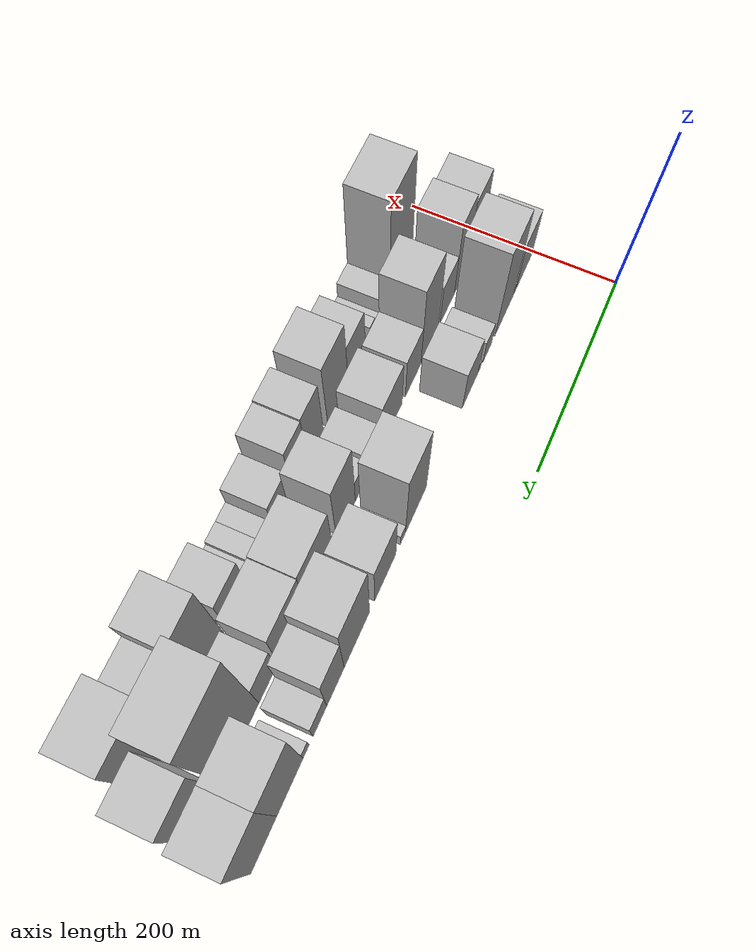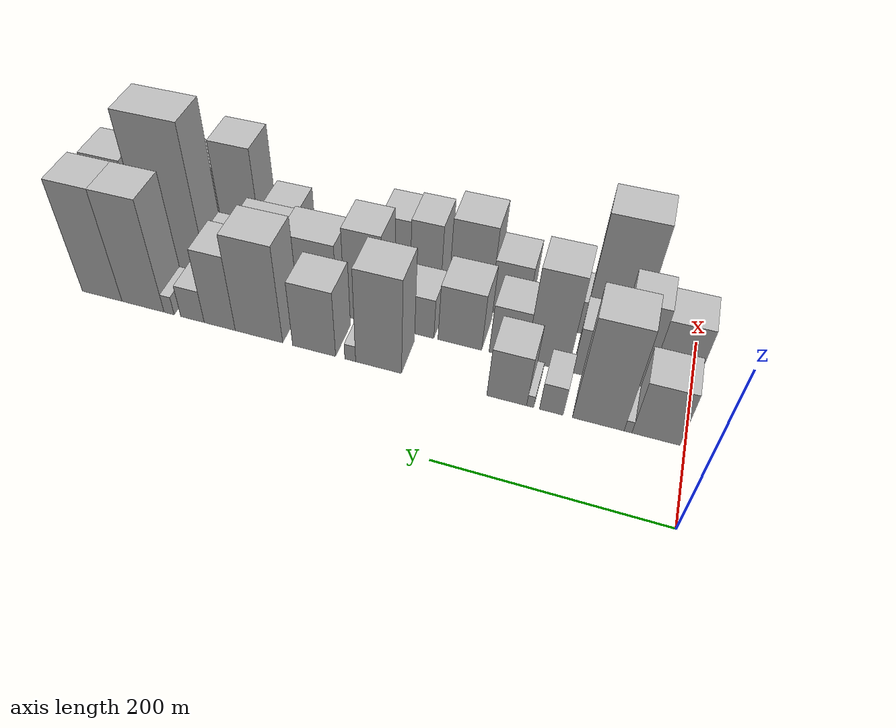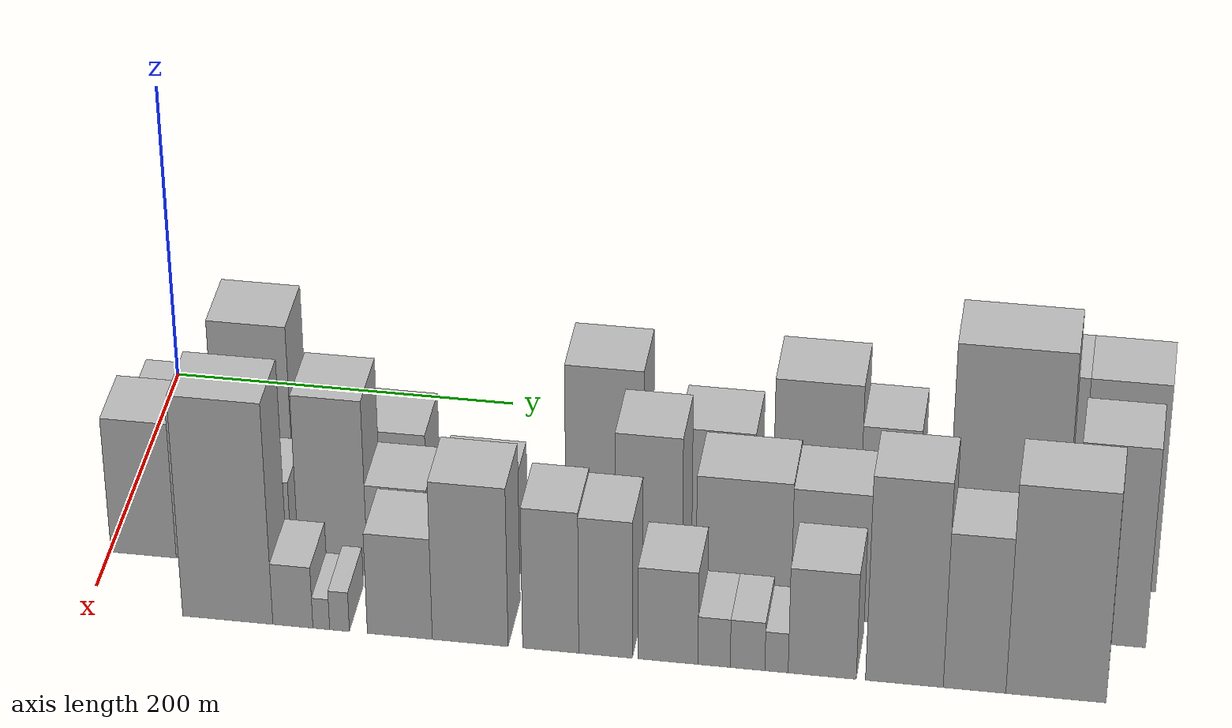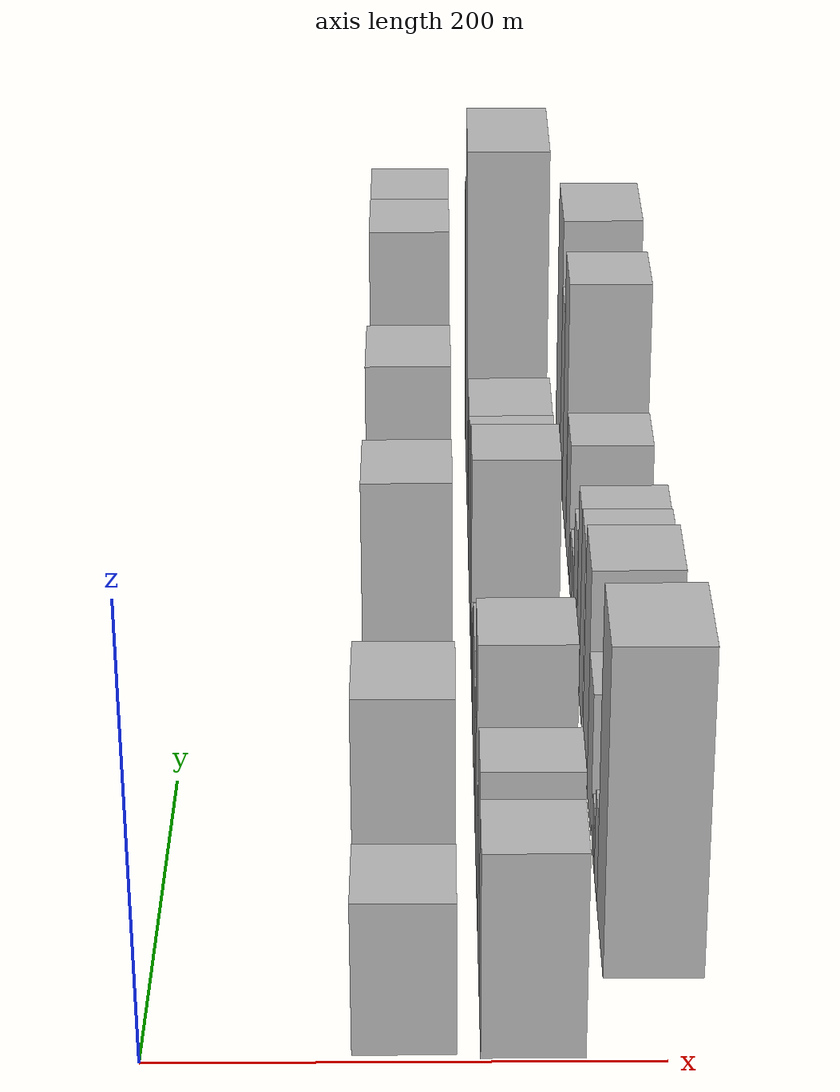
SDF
<sdf version="1.6">
 <world name="default">
  <model name="building_18">
   <static>1</static>
   <pose>100.0000 24.4933 0 0.000000 0.000000 0.000000</pose>
   <link name="link">
    <pose>0 0 34.50 0 0 0</pose>
    <collision name="collision"><geometry><box><size>40.0000 40.1148 69.0000</size></box></geometry></collision>
    <visual name="visual">
     <cast_shadows>0</cast_shadows>
     <geometry><box><size>40.0000 40.1148 69.0000</size></box></geometry>
     <material>
      <script>
       <uri>model://HANNAS_wall/materials/scripts</uri>
       <uri>model://HANNAS_wall/materials/textures</uri>
       <name>vrc/HANNAS_wall</name>
      </script>
     </material>
    </visual>
   </link>
  </model>
  <model name="building_19">
   <static>1</static>
   <pose>100.0000 47.8376 0 0.000000 0.000000 0.000000</pose>
   <link name="link">
    <pose>0 0 7.50 0 0 0</pose>
    <collision name="collision"><geometry><box><size>40.0000 6.5738 15.0000</size></box></geometry></collision>
    <visual name="visual">
     <cast_shadows>0</cast_shadows>
     <geometry><box><size>40.0000 6.5738 15.0000</size></box></geometry>
     <material>
      <script>
       <uri>model://HANNAS_wall/materials/scripts</uri>
       <uri>model://HANNAS_wall/materials/textures</uri>
       <name>vrc/HANNAS_wall</name>
      </script>
     </material>
    </visual>
   </link>
  </model>
  <model name="building_20">
   <static>1</static>
   <pose>100.0000 73.2737 0 0.000000 0.000000 0.000000</pose>
   <link name="link">
    <pose>0 0 64.50 0 0 0</pose>
    <collision name="collision"><geometry><box><size>40.0000 44.2983 129.0000</size></box></geometry></collision>
    <visual name="visual">
     <cast_shadows>0</cast_shadows>
     <geometry><box><size>40.0000 44.2983 129.0000</size></box></geometry>
     <material>
      <script>
       <uri>model://HANNAS_wall/materials/scripts</uri>
       <uri>model://HANNAS_wall/materials/textures</uri>
       <name>vrc/HANNAS_wall</name>
      </script>
     </material>
    </visual>
   </link>
  </model>
  <model name="building_21">
   <static>1</static>
   <pose>100.0000 113.8179 0 0.000000 0.000000 0.000000</pose>
   <link name="link">
    <pose>0 0 18.00 0 0 0</pose>
    <collision name="collision"><geometry><box><size>40.0000 20.7900 36.0000</size></box></geometry></collision>
    <visual name="visual">
     <cast_shadows>0</cast_shadows>
     <geometry><box><size>40.0000 20.7900 36.0000</size></box></geometry>
     <material>
      <script>
       <uri>model://HANNAS_wall/materials/scripts</uri>
       <uri>model://HANNAS_wall/materials/textures</uri>
       <name>vrc/HANNAS_wall</name>
      </script>
     </material>
    </visual>
   </link>
  </model>
  <model name="building_22">
   <static>1</static>
   <pose>100.0000 132.3706 0 0.000000 0.000000 0.000000</pose>
   <link name="link">
    <pose>0 0 7.50 0 0 0</pose>
    <collision name="collision"><geometry><box><size>40.0000 6.3154 15.0000</size></box></geometry></collision>
    <visual name="visual">
     <cast_shadows>0</cast_shadows>
     <geometry><box><size>40.0000 6.3154 15.0000</size></box></geometry>
     <material>
      <script>
       <uri>model://HANNAS_wall/materials/scripts</uri>
       <uri>model://HANNAS_wall/materials/textures</uri>
       <name>vrc/HANNAS_wall</name>
      </script>
     </material>
    </visual>
   </link>
  </model>
  <model name="building_23">
   <static>1</static>
   <pose>100.0000 153.3923 0 0.000000 0.000000 0.000000</pose>
   <link name="link">
    <pose>0 0 31.50 0 0 0</pose>
    <collision name="collision"><geometry><box><size>40.0000 35.7281 63.0000</size></box></geometry></collision>
    <visual name="visual">
     <cast_shadows>0</cast_shadows>
     <geometry><box><size>40.0000 35.7281 63.0000</size></box></geometry>
     <material>
      <script>
       <uri>model://HANNAS_wall/materials/scripts</uri>
       <uri>model://HANNAS_wall/materials/textures</uri>
       <name>vrc/HANNAS_wall</name>
      </script>
     </material>
    </visual>
   </link>
  </model>
  <model name="building_24">
   <static>1</static>
   <pose>100.0000 272.0891 0 0.000000 0.000000 0.000000</pose>
   <link name="link">
    <pose>0 0 60.00 0 0 0</pose>
    <collision name="collision"><geometry><box><size>40.0000 43.8885 120.0000</size></box></geometry></collision>
    <visual name="visual">
     <cast_shadows>0</cast_shadows>
     <geometry><box><size>40.0000 43.8885 120.0000</size></box></geometry>
     <material>
      <script>
       <uri>model://HANNAS_wall/materials/scripts</uri>
       <uri>model://HANNAS_wall/materials/textures</uri>
       <name>vrc/HANNAS_wall</name>
      </script>
     </material>
    </visual>
   </link>
  </model>
  <model name="building_25">
   <static>1</static>
   <pose>100.0000 299.2627 0 0.000000 0.000000 0.000000</pose>
   <link name="link">
    <pose>0 0 10.50 0 0 0</pose>
    <collision name="collision"><geometry><box><size>40.0000 10.4587 21.0000</size></box></geometry></collision>
    <visual name="visual">
     <cast_shadows>0</cast_shadows>
     <geometry><box><size>40.0000 10.4587 21.0000</size></box></geometry>
     <material>
      <script>
       <uri>model://HANNAS_wall/materials/scripts</uri>
       <uri>model://HANNAS_wall/materials/textures</uri>
       <name>vrc/HANNAS_wall</name>
      </script>
     </material>
    </visual>
   </link>
  </model>
  <model name="building_26">
   <static>1</static>
   <pose>100.0000 334.7505 0 0.000000 0.000000 0.000000</pose>
   <link name="link">
    <pose>0 0 42.00 0 0 0</pose>
    <collision name="collision"><geometry><box><size>40.0000 42.5169 84.0000</size></box></geometry></collision>
    <visual name="visual">
     <cast_shadows>0</cast_shadows>
     <geometry><box><size>40.0000 42.5169 84.0000</size></box></geometry>
     <material>
      <script>
       <uri>model://HANNAS_wall/materials/scripts</uri>
       <uri>model://HANNAS_wall/materials/textures</uri>
       <name>vrc/HANNAS_wall</name>
      </script>
     </material>
    </visual>
   </link>
  </model>
  <model name="building_27">
   <static>1</static>
   <pose>100.0000 390.1884 0 0.000000 0.000000 0.000000</pose>
   <link name="link">
    <pose>0 0 61.50 0 0 0</pose>
    <collision name="collision"><geometry><box><size>40.0000 48.3588 123.0000</size></box></geometry></collision>
    <visual name="visual">
     <cast_shadows>0</cast_shadows>
     <geometry><box><size>40.0000 48.3588 123.0000</size></box></geometry>
     <material>
      <script>
       <uri>model://HANNAS_wall/materials/scripts</uri>
       <uri>model://HANNAS_wall/materials/textures</uri>
       <name>vrc/HANNAS_wall</name>
      </script>
     </material>
    </visual>
   </link>
  </model>
  <model name="building_28">
   <static>1</static>
   <pose>100.0000 430.5338 0 0.000000 0.000000 0.000000</pose>
   <link name="link">
    <pose>0 0 48.00 0 0 0</pose>
    <collision name="collision"><geometry><box><size>40.0000 32.3321 96.0000</size></box></geometry></collision>
    <visual name="visual">
     <cast_shadows>0</cast_shadows>
     <geometry><box><size>40.0000 32.3321 96.0000</size></box></geometry>
     <material>
      <script>
       <uri>model://HANNAS_wall/materials/scripts</uri>
       <uri>model://HANNAS_wall/materials/textures</uri>
       <name>vrc/HANNAS_wall</name>
      </script>
     </material>
    </visual>
   </link>
  </model>
  <model name="building_29">
   <static>1</static>
   <pose>100.0000 459.1189 0 0.000000 0.000000 0.000000</pose>
   <link name="link">
    <pose>0 0 21.00 0 0 0</pose>
    <collision name="collision"><geometry><box><size>40.0000 24.8381 42.0000</size></box></geometry></collision>
    <visual name="visual">
     <cast_shadows>0</cast_shadows>
     <geometry><box><size>40.0000 24.8381 42.0000</size></box></geometry>
     <material>
      <script>
       <uri>model://HANNAS_wall/materials/scripts</uri>
       <uri>model://HANNAS_wall/materials/textures</uri>
       <name>vrc/HANNAS_wall</name>
      </script>
     </material>
    </visual>
   </link>
  </model>
  <model name="building_30">
   <static>1</static>
   <pose>100.0000 483.9694 0 0.000000 0.000000 0.000000</pose>
   <link name="link">
    <pose>0 0 12.00 0 0 0</pose>
    <collision name="collision"><geometry><box><size>40.0000 10.8628 24.0000</size></box></geometry></collision>
    <visual name="visual">
     <cast_shadows>0</cast_shadows>
     <geometry><box><size>40.0000 10.8628 24.0000</size></box></geometry>
     <material>
      <script>
       <uri>model://HANNAS_wall/materials/scripts</uri>
       <uri>model://HANNAS_wall/materials/textures</uri>
       <name>vrc/HANNAS_wall</name>
      </script>
     </material>
    </visual>
   </link>
  </model>
  <model name="building_31">
   <static>1</static>
   <pose>100.0000 512.2028 0 0.000000 0.000000 0.000000</pose>
   <link name="link">
    <pose>0 0 70.50 0 0 0</pose>
    <collision name="collision"><geometry><box><size>40.0000 45.6041 141.0000</size></box></geometry></collision>
    <visual name="visual">
     <cast_shadows>0</cast_shadows>
     <geometry><box><size>40.0000 45.6041 141.0000</size></box></geometry>
     <material>
      <script>
       <uri>model://HANNAS_wall/materials/scripts</uri>
       <uri>model://HANNAS_wall/materials/textures</uri>
       <name>vrc/HANNAS_wall</name>
      </script>
     </material>
    </visual>
   </link>
  </model>
  <model name="building_32">
   <static>1</static>
   <pose>100.0000 557.0036 0 0.000000 0.000000 0.000000</pose>
   <link name="link">
    <pose>0 0 70.50 0 0 0</pose>
    <collision name="collision"><geometry><box><size>40.0000 43.9974 141.0000</size></box></geometry></collision>
    <visual name="visual">
     <cast_shadows>0</cast_shadows>
     <geometry><box><size>40.0000 43.9974 141.0000</size></box></geometry>
     <material>
      <script>
       <uri>model://HANNAS_wall/materials/scripts</uri>
       <uri>model://HANNAS_wall/materials/textures</uri>
       <name>vrc/HANNAS_wall</name>
      </script>
     </material>
    </visual>
   </link>
  </model>
  <model name="building_46">
   <static>1</static>
   <pose>149.0000 19.5694 0 0.000000 0.000000 0.000000</pose>
   <link name="link">
    <pose>0 0 46.50 0 0 0</pose>
    <collision name="collision"><geometry><box><size>40.0000 37.1507 93.0000</size></box></geometry></collision>
    <visual name="visual">
     <cast_shadows>0</cast_shadows>
     <geometry><box><size>40.0000 37.1507 93.0000</size></box></geometry>
     <material>
      <script>
       <uri>model://HANNAS_wall/materials/scripts</uri>
       <uri>model://HANNAS_wall/materials/textures</uri>
       <name>vrc/HANNAS_wall</name>
      </script>
     </material>
    </visual>
   </link>
  </model>
  <model name="building_47">
   <static>1</static>
   <pose>149.0000 54.3203 0 0.000000 0.000000 0.000000</pose>
   <link name="link">
    <pose>0 0 52.50 0 0 0</pose>
    <collision name="collision"><geometry><box><size>40.0000 32.3511 105.0000</size></box></geometry></collision>
    <visual name="visual">
     <cast_shadows>0</cast_shadows>
     <geometry><box><size>40.0000 32.3511 105.0000</size></box></geometry>
     <material>
      <script>
       <uri>model://HANNAS_wall/materials/scripts</uri>
       <uri>model://HANNAS_wall/materials/textures</uri>
       <name>vrc/HANNAS_wall</name>
      </script>
     </material>
    </visual>
   </link>
  </model>
  <model name="building_48">
   <static>1</static>
   <pose>149.0000 87.2325 0 0.000000 0.000000 0.000000</pose>
   <link name="link">
    <pose>0 0 30.00 0 0 0</pose>
    <collision name="collision"><geometry><box><size>40.0000 33.4732 60.0000</size></box></geometry></collision>
    <visual name="visual">
     <cast_shadows>0</cast_shadows>
     <geometry><box><size>40.0000 33.4732 60.0000</size></box></geometry>
     <material>
      <script>
       <uri>model://HANNAS_wall/materials/scripts</uri>
       <uri>model://HANNAS_wall/materials/textures</uri>
       <name>vrc/HANNAS_wall</name>
      </script>
     </material>
    </visual>
   </link>
  </model>
  <model name="building_49">
   <static>1</static>
   <pose>149.0000 127.3399 0 0.000000 0.000000 0.000000</pose>
   <link name="link">
    <pose>0 0 60.00 0 0 0</pose>
    <collision name="collision"><geometry><box><size>40.0000 38.7414 120.0000</size></box></geometry></collision>
    <visual name="visual">
     <cast_shadows>0</cast_shadows>
     <geometry><box><size>40.0000 38.7414 120.0000</size></box></geometry>
     <material>
      <script>
       <uri>model://HANNAS_wall/materials/scripts</uri>
       <uri>model://HANNAS_wall/materials/textures</uri>
       <name>vrc/HANNAS_wall</name>
      </script>
     </material>
    </visual>
   </link>
  </model>
  <model name="building_50">
   <static>1</static>
   <pose>149.0000 163.8444 0 0.000000 0.000000 0.000000</pose>
   <link name="link">
    <pose>0 0 31.50 0 0 0</pose>
    <collision name="collision"><geometry><box><size>40.0000 34.2678 63.0000</size></box></geometry></collision>
    <visual name="visual">
     <cast_shadows>0</cast_shadows>
     <geometry><box><size>40.0000 34.2678 63.0000</size></box></geometry>
     <material>
      <script>
       <uri>model://HANNAS_wall/materials/scripts</uri>
       <uri>model://HANNAS_wall/materials/textures</uri>
       <name>vrc/HANNAS_wall</name>
      </script>
     </material>
    </visual>
   </link>
  </model>
  <model name="building_51">
   <static>1</static>
   <pose>149.0000 208.9505 0 0.000000 0.000000 0.000000</pose>
   <link name="link">
    <pose>0 0 36.00 0 0 0</pose>
    <collision name="collision"><geometry><box><size>40.0000 41.9443 72.0000</size></box></geometry></collision>
    <visual name="visual">
     <cast_shadows>0</cast_shadows>
     <geometry><box><size>40.0000 41.9443 72.0000</size></box></geometry>
     <material>
      <script>
       <uri>model://HANNAS_wall/materials/scripts</uri>
       <uri>model://HANNAS_wall/materials/textures</uri>
       <name>vrc/HANNAS_wall</name>
      </script>
     </material>
    </visual>
   </link>
  </model>
  <model name="building_52">
   <static>1</static>
   <pose>149.0000 248.8389 0 0.000000 0.000000 0.000000</pose>
   <link name="link">
    <pose>0 0 25.50 0 0 0</pose>
    <collision name="collision"><geometry><box><size>40.0000 29.8324 51.0000</size></box></geometry></collision>
    <visual name="visual">
     <cast_shadows>0</cast_shadows>
     <geometry><box><size>40.0000 29.8324 51.0000</size></box></geometry>
     <material>
      <script>
       <uri>model://HANNAS_wall/materials/scripts</uri>
       <uri>model://HANNAS_wall/materials/textures</uri>
       <name>vrc/HANNAS_wall</name>
      </script>
     </material>
    </visual>
   </link>
  </model>
  <model name="building_53">
   <static>1</static>
   <pose>149.0000 274.4855 0 0.000000 0.000000 0.000000</pose>
   <link name="link">
    <pose>0 0 21.00 0 0 0</pose>
    <collision name="collision"><geometry><box><size>40.0000 21.4608 42.0000</size></box></geometry></collision>
    <visual name="visual">
     <cast_shadows>0</cast_shadows>
     <geometry><box><size>40.0000 21.4608 42.0000</size></box></geometry>
     <material>
      <script>
       <uri>model://HANNAS_wall/materials/scripts</uri>
       <uri>model://HANNAS_wall/materials/textures</uri>
       <name>vrc/HANNAS_wall</name>
      </script>
     </material>
    </visual>
   </link>
  </model>
  <model name="building_54">
   <static>1</static>
   <pose>149.0000 303.7204 0 0.000000 0.000000 0.000000</pose>
   <link name="link">
    <pose>0 0 57.00 0 0 0</pose>
    <collision name="collision"><geometry><box><size>40.0000 37.0091 114.0000</size></box></geometry></collision>
    <visual name="visual">
     <cast_shadows>0</cast_shadows>
     <geometry><box><size>40.0000 37.0091 114.0000</size></box></geometry>
     <material>
      <script>
       <uri>model://HANNAS_wall/materials/scripts</uri>
       <uri>model://HANNAS_wall/materials/textures</uri>
       <name>vrc/HANNAS_wall</name>
      </script>
     </material>
    </visual>
   </link>
  </model>
  <model name="building_55">
   <static>1</static>
   <pose>149.0000 326.0372 0 0.000000 0.000000 0.000000</pose>
   <link name="link">
    <pose>0 0 9.00 0 0 0</pose>
    <collision name="collision"><geometry><box><size>40.0000 7.6245 18.0000</size></box></geometry></collision>
    <visual name="visual">
     <cast_shadows>0</cast_shadows>
     <geometry><box><size>40.0000 7.6245 18.0000</size></box></geometry>
     <material>
      <script>
       <uri>model://HANNAS_wall/materials/scripts</uri>
       <uri>model://HANNAS_wall/materials/textures</uri>
       <name>vrc/HANNAS_wall</name>
      </script>
     </material>
    </visual>
   </link>
  </model>
  <model name="building_56">
   <static>1</static>
   <pose>149.0000 356.0852 0 0.000000 0.000000 0.000000</pose>
   <link name="link">
    <pose>0 0 45.00 0 0 0</pose>
    <collision name="collision"><geometry><box><size>40.0000 52.4715 90.0000</size></box></geometry></collision>
    <visual name="visual">
     <cast_shadows>0</cast_shadows>
     <geometry><box><size>40.0000 52.4715 90.0000</size></box></geometry>
     <material>
      <script>
       <uri>model://HANNAS_wall/materials/scripts</uri>
       <uri>model://HANNAS_wall/materials/textures</uri>
       <name>vrc/HANNAS_wall</name>
      </script>
     </material>
    </visual>
   </link>
  </model>
  <model name="building_57">
   <static>1</static>
   <pose>149.0000 407.1149 0 0.000000 0.000000 0.000000</pose>
   <link name="link">
    <pose>0 0 43.50 0 0 0</pose>
    <collision name="collision"><geometry><box><size>40.0000 49.5879 87.0000</size></box></geometry></collision>
    <visual name="visual">
     <cast_shadows>0</cast_shadows>
     <geometry><box><size>40.0000 49.5879 87.0000</size></box></geometry>
     <material>
      <script>
       <uri>model://HANNAS_wall/materials/scripts</uri>
       <uri>model://HANNAS_wall/materials/textures</uri>
       <name>vrc/HANNAS_wall</name>
      </script>
     </material>
    </visual>
   </link>
  </model>
  <model name="building_58">
   <static>1</static>
   <pose>149.0000 450.3401 0 0.000000 0.000000 0.000000</pose>
   <link name="link">
    <pose>0 0 30.00 0 0 0</pose>
    <collision name="collision"><geometry><box><size>40.0000 30.8625 60.0000</size></box></geometry></collision>
    <visual name="visual">
     <cast_shadows>0</cast_shadows>
     <geometry><box><size>40.0000 30.8625 60.0000</size></box></geometry>
     <material>
      <script>
       <uri>model://HANNAS_wall/materials/scripts</uri>
       <uri>model://HANNAS_wall/materials/textures</uri>
       <name>vrc/HANNAS_wall</name>
      </script>
     </material>
    </visual>
   </link>
  </model>
  <model name="building_59">
   <static>1</static>
   <pose>149.0000 497.3835 0 0.000000 0.000000 0.000000</pose>
   <link name="link">
    <pose>0 0 96.00 0 0 0</pose>
    <collision name="collision"><geometry><box><size>40.0000 63.2244 192.0000</size></box></geometry></collision>
    <visual name="visual">
     <cast_shadows>0</cast_shadows>
     <geometry><box><size>40.0000 63.2244 192.0000</size></box></geometry>
     <material>
      <script>
       <uri>model://HANNAS_wall/materials/scripts</uri>
       <uri>model://HANNAS_wall/materials/textures</uri>
       <name>vrc/HANNAS_wall</name>
      </script>
     </material>
    </visual>
   </link>
  </model>
  <model name="building_60">
   <static>1</static>
   <pose>149.0000 554.9801 0 0.000000 0.000000 0.000000</pose>
   <link name="link">
    <pose>0 0 67.50 0 0 0</pose>
    <collision name="collision"><geometry><box><size>40.0000 41.9688 135.0000</size></box></geometry></collision>
    <visual name="visual">
     <cast_shadows>0</cast_shadows>
     <geometry><box><size>40.0000 41.9688 135.0000</size></box></geometry>
     <material>
      <script>
       <uri>model://HANNAS_wall/materials/scripts</uri>
       <uri>model://HANNAS_wall/materials/textures</uri>
       <name>vrc/HANNAS_wall</name>
      </script>
     </material>
    </visual>
   </link>
  </model>
  <model name="building_76">
   <static>1</static>
   <pose>198.0000 78.3447 0 0.000000 0.000000 0.000000</pose>
   <link name="link">
    <pose>0 0 75.00 0 0 0</pose>
    <collision name="collision"><geometry><box><size>40.0000 50.3180 150.0000</size></box></geometry></collision>
    <visual name="visual">
     <cast_shadows>0</cast_shadows>
     <geometry><box><size>40.0000 50.3180 150.0000</size></box></geometry>
     <material>
      <script>
       <uri>model://HANNAS_wall/materials/scripts</uri>
       <uri>model://HANNAS_wall/materials/textures</uri>
       <name>vrc/HANNAS_wall</name>
      </script>
     </material>
    </visual>
   </link>
  </model>
  <model name="building_77">
   <static>1</static>
   <pose>198.0000 114.6345 0 0.000000 0.000000 0.000000</pose>
   <link name="link">
    <pose>0 0 21.00 0 0 0</pose>
    <collision name="collision"><geometry><box><size>40.0000 22.2617 42.0000</size></box></geometry></collision>
    <visual name="visual">
     <cast_shadows>0</cast_shadows>
     <geometry><box><size>40.0000 22.2617 42.0000</size></box></geometry>
     <material>
      <script>
       <uri>model://HANNAS_wall/materials/scripts</uri>
       <uri>model://HANNAS_wall/materials/textures</uri>
       <name>vrc/HANNAS_wall</name>
      </script>
     </material>
    </visual>
   </link>
  </model>
  <model name="building_78">
   <static>1</static>
   <pose>198.0000 130.4133 0 0.000000 0.000000 0.000000</pose>
   <link name="link">
    <pose>0 0 10.50 0 0 0</pose>
    <collision name="collision"><geometry><box><size>40.0000 9.2959 21.0000</size></box></geometry></collision>
    <visual name="visual">
     <cast_shadows>0</cast_shadows>
     <geometry><box><size>40.0000 9.2959 21.0000</size></box></geometry>
     <material>
      <script>
       <uri>model://HANNAS_wall/materials/scripts</uri>
       <uri>model://HANNAS_wall/materials/textures</uri>
       <name>vrc/HANNAS_wall</name>
      </script>
     </material>
    </visual>
   </link>
  </model>
  <model name="building_79">
   <static>1</static>
   <pose>198.0000 140.5297 0 0.000000 0.000000 0.000000</pose>
   <link name="link">
    <pose>0 0 13.50 0 0 0</pose>
    <collision name="collision"><geometry><box><size>40.0000 10.9368 27.0000</size></box></geometry></collision>
    <visual name="visual">
     <cast_shadows>0</cast_shadows>
     <geometry><box><size>40.0000 10.9368 27.0000</size></box></geometry>
     <material>
      <script>
       <uri>model://HANNAS_wall/materials/scripts</uri>
       <uri>model://HANNAS_wall/materials/textures</uri>
       <name>vrc/HANNAS_wall</name>
      </script>
     </material>
    </visual>
   </link>
  </model>
  <model name="building_80">
   <static>1</static>
   <pose>198.0000 173.9560 0 0.000000 0.000000 0.000000</pose>
   <link name="link">
    <pose>0 0 34.50 0 0 0</pose>
    <collision name="collision"><geometry><box><size>40.0000 35.9160 69.0000</size></box></geometry></collision>
    <visual name="visual">
     <cast_shadows>0</cast_shadows>
     <geometry><box><size>40.0000 35.9160 69.0000</size></box></geometry>
     <material>
      <script>
       <uri>model://HANNAS_wall/materials/scripts</uri>
       <uri>model://HANNAS_wall/materials/textures</uri>
       <name>vrc/HANNAS_wall</name>
      </script>
     </material>
    </visual>
   </link>
  </model>
  <model name="building_81">
   <static>1</static>
   <pose>198.0000 212.8124 0 0.000000 0.000000 0.000000</pose>
   <link name="link">
    <pose>0 0 54.00 0 0 0</pose>
    <collision name="collision"><geometry><box><size>40.0000 41.7968 108.0000</size></box></geometry></collision>
    <visual name="visual">
     <cast_shadows>0</cast_shadows>
     <geometry><box><size>40.0000 41.7968 108.0000</size></box></geometry>
     <material>
      <script>
       <uri>model://HANNAS_wall/materials/scripts</uri>
       <uri>model://HANNAS_wall/materials/textures</uri>
       <name>vrc/HANNAS_wall</name>
      </script>
     </material>
    </visual>
   </link>
  </model>
  <model name="building_82">
   <static>1</static>
   <pose>198.0000 257.0866 0 0.000000 0.000000 0.000000</pose>
   <link name="link">
    <pose>0 0 48.00 0 0 0</pose>
    <collision name="collision"><geometry><box><size>40.0000 30.7514 96.0000</size></box></geometry></collision>
    <visual name="visual">
     <cast_shadows>0</cast_shadows>
     <geometry><box><size>40.0000 30.7514 96.0000</size></box></geometry>
     <material>
      <script>
       <uri>model://HANNAS_wall/materials/scripts</uri>
       <uri>model://HANNAS_wall/materials/textures</uri>
       <name>vrc/HANNAS_wall</name>
      </script>
     </material>
    </visual>
   </link>
  </model>
  <model name="building_83">
   <static>1</static>
   <pose>198.0000 287.1319 0 0.000000 0.000000 0.000000</pose>
   <link name="link">
    <pose>0 0 46.50 0 0 0</pose>
    <collision name="collision"><geometry><box><size>40.0000 29.3392 93.0000</size></box></geometry></collision>
    <visual name="visual">
     <cast_shadows>0</cast_shadows>
     <geometry><box><size>40.0000 29.3392 93.0000</size></box></geometry>
     <material>
      <script>
       <uri>model://HANNAS_wall/materials/scripts</uri>
       <uri>model://HANNAS_wall/materials/textures</uri>
       <name>vrc/HANNAS_wall</name>
      </script>
     </material>
    </visual>
   </link>
  </model>
  <model name="building_84">
   <static>1</static>
   <pose>198.0000 321.1648 0 0.000000 0.000000 0.000000</pose>
   <link name="link">
    <pose>0 0 31.50 0 0 0</pose>
    <collision name="collision"><geometry><box><size>40.0000 32.7265 63.0000</size></box></geometry></collision>
    <visual name="visual">
     <cast_shadows>0</cast_shadows>
     <geometry><box><size>40.0000 32.7265 63.0000</size></box></geometry>
     <material>
      <script>
       <uri>model://HANNAS_wall/materials/scripts</uri>
       <uri>model://HANNAS_wall/materials/textures</uri>
       <name>vrc/HANNAS_wall</name>
      </script>
     </material>
    </visual>
   </link>
  </model>
  <model name="building_85">
   <static>1</static>
   <pose>198.0000 346.3312 0 0.000000 0.000000 0.000000</pose>
   <link name="link">
    <pose>0 0 16.50 0 0 0</pose>
    <collision name="collision"><geometry><box><size>40.0000 17.6063 33.0000</size></box></geometry></collision>
    <visual name="visual">
     <cast_shadows>0</cast_shadows>
     <geometry><box><size>40.0000 17.6063 33.0000</size></box></geometry>
     <material>
      <script>
       <uri>model://HANNAS_wall/materials/scripts</uri>
       <uri>model://HANNAS_wall/materials/textures</uri>
       <name>vrc/HANNAS_wall</name>
      </script>
     </material>
    </visual>
   </link>
  </model>
  <model name="building_86">
   <static>1</static>
   <pose>198.0000 364.5375 0 0.000000 0.000000 0.000000</pose>
   <link name="link">
    <pose>0 0 16.50 0 0 0</pose>
    <collision name="collision"><geometry><box><size>40.0000 18.8065 33.0000</size></box></geometry></collision>
    <visual name="visual">
     <cast_shadows>0</cast_shadows>
     <geometry><box><size>40.0000 18.8065 33.0000</size></box></geometry>
     <material>
      <script>
       <uri>model://HANNAS_wall/materials/scripts</uri>
       <uri>model://HANNAS_wall/materials/textures</uri>
       <name>vrc/HANNAS_wall</name>
      </script>
     </material>
    </visual>
   </link>
  </model>
  <model name="building_87">
   <static>1</static>
   <pose>198.0000 380.2480 0 0.000000 0.000000 0.000000</pose>
   <link name="link">
    <pose>0 0 13.50 0 0 0</pose>
    <collision name="collision"><geometry><box><size>40.0000 12.6144 27.0000</size></box></geometry></collision>
    <visual name="visual">
     <cast_shadows>0</cast_shadows>
     <geometry><box><size>40.0000 12.6144 27.0000</size></box></geometry>
     <material>
      <script>
       <uri>model://HANNAS_wall/materials/scripts</uri>
       <uri>model://HANNAS_wall/materials/textures</uri>
       <name>vrc/HANNAS_wall</name>
      </script>
     </material>
    </visual>
   </link>
  </model>
  <model name="building_88">
   <static>1</static>
   <pose>198.0000 404.9810 0 0.000000 0.000000 0.000000</pose>
   <link name="link">
    <pose>0 0 36.00 0 0 0</pose>
    <collision name="collision"><geometry><box><size>40.0000 36.8517 72.0000</size></box></geometry></collision>
    <visual name="visual">
     <cast_shadows>0</cast_shadows>
     <geometry><box><size>40.0000 36.8517 72.0000</size></box></geometry>
     <material>
      <script>
       <uri>model://HANNAS_wall/materials/scripts</uri>
       <uri>model://HANNAS_wall/materials/textures</uri>
       <name>vrc/HANNAS_wall</name>
      </script>
     </material>
    </visual>
   </link>
  </model>
  <model name="building_89">
   <static>1</static>
   <pose>198.0000 449.3258 0 0.000000 0.000000 0.000000</pose>
   <link name="link">
    <pose>0 0 69.00 0 0 0</pose>
    <collision name="collision"><geometry><box><size>40.0000 41.8379 138.0000</size></box></geometry></collision>
    <visual name="visual">
     <cast_shadows>0</cast_shadows>
     <geometry><box><size>40.0000 41.8379 138.0000</size></box></geometry>
     <material>
      <script>
       <uri>model://HANNAS_wall/materials/scripts</uri>
       <uri>model://HANNAS_wall/materials/textures</uri>
       <name>vrc/HANNAS_wall</name>
      </script>
     </material>
    </visual>
   </link>
  </model>
  <model name="building_90">
   <static>1</static>
   <pose>198.0000 487.0377 0 0.000000 0.000000 0.000000</pose>
   <link name="link">
    <pose>0 0 52.50 0 0 0</pose>
    <collision name="collision"><geometry><box><size>40.0000 33.5860 105.0000</size></box></geometry></collision>
    <visual name="visual">
     <cast_shadows>0</cast_shadows>
     <geometry><box><size>40.0000 33.5860 105.0000</size></box></geometry>
     <material>
      <script>
       <uri>model://HANNAS_wall/materials/scripts</uri>
       <uri>model://HANNAS_wall/materials/textures</uri>
       <name>vrc/HANNAS_wall</name>
      </script>
     </material>
    </visual>
   </link>
  </model>
  <model name="building_91">
   <static>1</static>
   <pose>198.0000 530.5991 0 0.000000 0.000000 0.000000</pose>
   <link name="link">
    <pose>0 0 70.50 0 0 0</pose>
    <collision name="collision"><geometry><box><size>40.0000 53.5367 141.0000</size></box></geometry></collision>
    <visual name="visual">
     <cast_shadows>0</cast_shadows>
     <geometry><box><size>40.0000 53.5367 141.0000</size></box></geometry>
     <material>
      <script>
       <uri>model://HANNAS_wall/materials/scripts</uri>
       <uri>model://HANNAS_wall/materials/textures</uri>
       <name>vrc/HANNAS_wall</name>
      </script>
     </material>
    </visual>
   </link>
  </model>
 </world>
</sdf>
